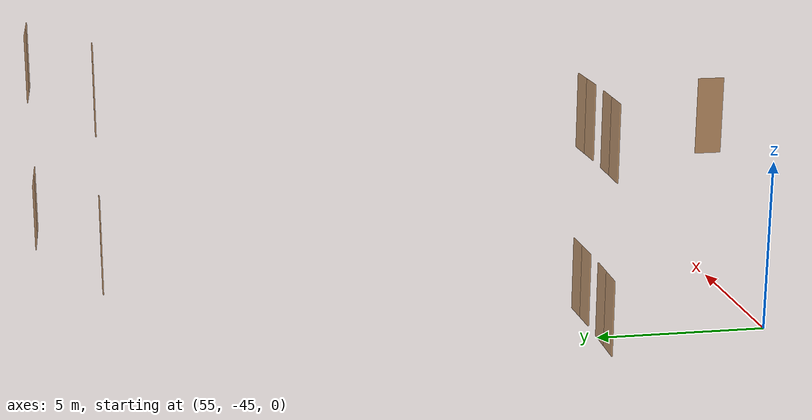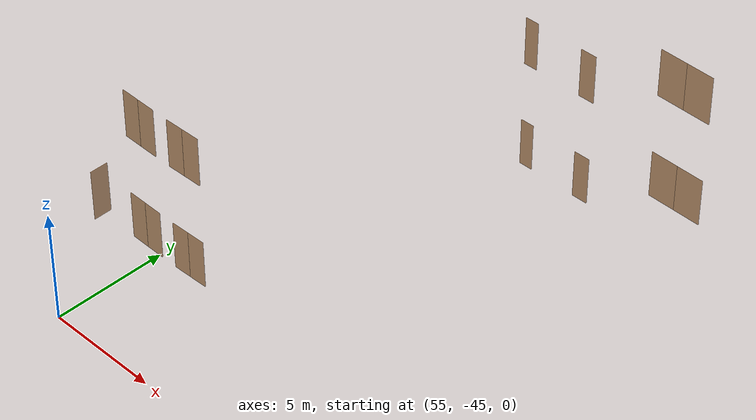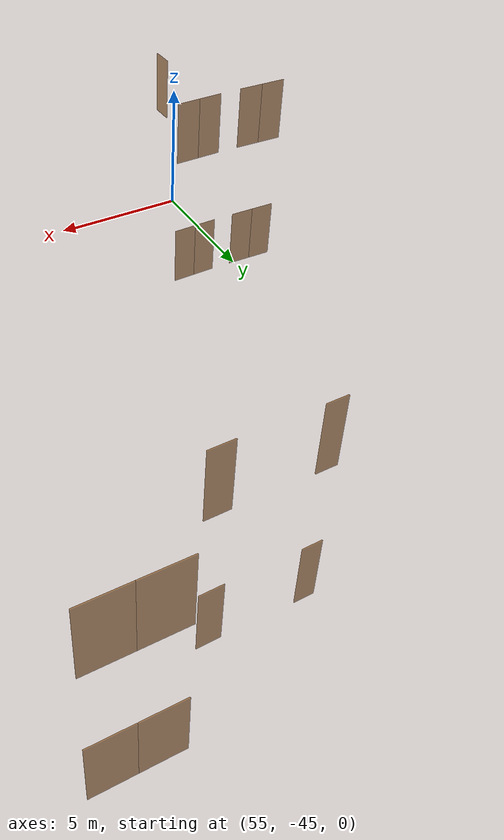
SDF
<sdf version="1.7">
 <world name="sim_world">
  <model name="null29">
   <pose>56.75721404955611 -39.98507373973776 0.0 0 0 0.03016034311520613</pose>
   <link name="right">
    <pose>0.41388301737579014 0 1.11 0 0 0</pose>
    <visual name="right_visual">
     <geometry><box><size>0.8177660347515803 0.03 2.2</size></box></geometry>
     <material>
      <ambient>0.5 0.25 0 0.6</ambient>
      <diffuse>0.5 0.25 0 0.6</diffuse>
      <pbr><metal><metalness>0.0</metalness></metal></pbr>
     </material>
    </visual>
    <collision name="right_collision">
     <geometry><box><size>0.8177660347515803 0.03 2.2</size></box></geometry>
     <surface><contact><collide_bitmask>0x02</collide_bitmask></contact></surface>
    </collision>
    <inertial>
     <mass>50.0</mass>
     <inertia><ixx>20.17041666666667</ixx><iyy>22.953088698305518</iyy><izz>2.790172031638845</izz></inertia>
    </inertial>
   </link>
   <joint name="right_joint" type="revolute">
    <parent>world</parent>
    <child>right</child>
    <axis><xyz>0 0 -1</xyz><limit><lower>0</lower><upper>1.57</upper></limit></axis>
    <pose>0.41388301737579014 0 0 0 0 0</pose>
   </joint>
   <link name="left">
    <pose>-0.41388301737579014 0 1.11 0 0 0</pose>
    <visual name="left_visual">
     <geometry><box><size>0.8177660347515803 0.03 2.2</size></box></geometry>
     <material>
      <ambient>0.5 0.25 0 0.6</ambient>
      <diffuse>0.5 0.25 0 0.6</diffuse>
      <pbr><metal><metalness>0.0</metalness></metal></pbr>
     </material>
    </visual>
    <collision name="left_collision">
     <geometry><box><size>0.8177660347515803 0.03 2.2</size></box></geometry>
     <surface><contact><collide_bitmask>0x02</collide_bitmask></contact></surface>
    </collision>
    <inertial>
     <mass>50.0</mass>
     <inertia><ixx>20.17041666666667</ixx><iyy>22.953088698305518</iyy><izz>2.790172031638845</izz></inertia>
    </inertial>
   </link>
   <joint name="left_joint" type="revolute">
    <parent>world</parent>
    <child>left</child>
    <axis><xyz>0 0 -1</xyz><limit><lower>-1.57</lower><upper>0</upper></limit></axis>
    <pose>-0.41388301737579014 0 0 0 0 0</pose>
   </joint>
   <plugin name="register_component" filename="libregister_component.so">
    <component name="Door">
     <v_max_door>0.5</v_max_door>
     <a_max_door>0.3</a_max_door>
     <a_nom_door>0.15</a_nom_door>
     <dx_min_door>0.01</dx_min_door>
     <f_max_door>500.0</f_max_door>
     <ros_interface>true</ros_interface>
     <door name="null29" type="DoubleSwingDoor" left_joint_name="left_joint" right_joint_name="right_joint"/>
    </component>
   </plugin>
  </model>
  <model name="null30">
   <pose>54.3112120621123 -40.000373435120196 0.0 0 0 -0.011263767413465844</pose>
   <link name="right">
    <pose>0.42891651536758324 0 1.11 0 0 0</pose>
    <visual name="right_visual">
     <geometry><box><size>0.8478330307351665 0.03 2.2</size></box></geometry>
     <material>
      <ambient>0.5 0.25 0 0.6</ambient>
      <diffuse>0.5 0.25 0 0.6</diffuse>
      <pbr><metal><metalness>0.0</metalness></metal></pbr>
     </material>
    </visual>
    <collision name="right_collision">
     <geometry><box><size>0.8478330307351665 0.03 2.2</size></box></geometry>
     <surface><contact><collide_bitmask>0x02</collide_bitmask></contact></surface>
    </collision>
    <inertial>
     <mass>50.0</mass>
     <inertia><ixx>20.17041666666667</ixx><iyy>23.161753533356578</iyy><izz>2.9988368666899077</izz></inertia>
    </inertial>
   </link>
   <joint name="right_joint" type="revolute">
    <parent>world</parent>
    <child>right</child>
    <axis><xyz>0 0 -1</xyz><limit><lower>0</lower><upper>1.57</upper></limit></axis>
    <pose>0.42891651536758324 0 0 0 0 0</pose>
   </joint>
   <link name="left">
    <pose>-0.42891651536758324 0 1.11 0 0 0</pose>
    <visual name="left_visual">
     <geometry><box><size>0.8478330307351665 0.03 2.2</size></box></geometry>
     <material>
      <ambient>0.5 0.25 0 0.6</ambient>
      <diffuse>0.5 0.25 0 0.6</diffuse>
      <pbr><metal><metalness>0.0</metalness></metal></pbr>
     </material>
    </visual>
    <collision name="left_collision">
     <geometry><box><size>0.8478330307351665 0.03 2.2</size></box></geometry>
     <surface><contact><collide_bitmask>0x02</collide_bitmask></contact></surface>
    </collision>
    <inertial>
     <mass>50.0</mass>
     <inertia><ixx>20.17041666666667</ixx><iyy>23.161753533356578</iyy><izz>2.9988368666899077</izz></inertia>
    </inertial>
   </link>
   <joint name="left_joint" type="revolute">
    <parent>world</parent>
    <child>left</child>
    <axis><xyz>0 0 -1</xyz><limit><lower>-1.57</lower><upper>0</upper></limit></axis>
    <pose>-0.42891651536758324 0 0 0 0 0</pose>
   </joint>
   <plugin name="register_component" filename="libregister_component.so">
    <component name="Door">
     <v_max_door>0.5</v_max_door>
     <a_max_door>0.3</a_max_door>
     <a_nom_door>0.15</a_nom_door>
     <dx_min_door>0.01</dx_min_door>
     <f_max_door>500.0</f_max_door>
     <ros_interface>true</ros_interface>
     <door name="null30" type="DoubleSwingDoor" left_joint_name="left_joint" right_joint_name="right_joint"/>
    </component>
   </plugin>
  </model>
  <model name="null43">
   <pose>61.205681117426394 -26.04441481852968 0.0 0 0 0.024390884898283224</pose>
   <link name="right">
    <pose>0 0 1.11 0 0 0</pose>
    <visual name="right_visual">
     <geometry><box><size>0.6144581876163675 0.03 2.2</size></box></geometry>
     <material>
      <ambient>0.5 0.25 0 0.6</ambient>
      <diffuse>0.5 0.25 0 0.6</diffuse>
      <pbr><metal><metalness>0.0</metalness></metal></pbr>
     </material>
    </visual>
    <collision name="right_collision">
     <geometry><box><size>0.6144581876163675 0.03 2.2</size></box></geometry>
     <surface><contact><collide_bitmask>0x02</collide_bitmask></contact></surface>
    </collision>
    <inertial>
     <mass>50.0</mass>
     <inertia><ixx>20.17041666666667</ixx><iyy>21.739828601369968</iyy><izz>1.5769119347032965</izz></inertia>
    </inertial>
   </link>
   <joint name="right_joint" type="revolute">
    <parent>world</parent>
    <child>right</child>
    <axis><xyz>0 0 -1</xyz><limit><lower>0</lower><upper>1.57</upper></limit></axis>
    <pose>0.31222909380818376 0 0 0 0 0</pose>
   </joint>
   <plugin name="register_component" filename="libregister_component.so">
    <component name="Door">
     <v_max_door>0.5</v_max_door>
     <a_max_door>0.3</a_max_door>
     <a_nom_door>0.15</a_nom_door>
     <dx_min_door>0.01</dx_min_door>
     <f_max_door>500.0</f_max_door>
     <ros_interface>true</ros_interface>
     <door name="null43" type="SwingDoor" left_joint_name="empty_joint" right_joint_name="right_joint"/>
    </component>
   </plugin>
  </model>
  <model name="null44">
   <pose>64.09385972733018 -26.027376202682134 0.0 0 0 0.025588563531781544</pose>
   <link name="right">
    <pose>0 0 1.11 0 0 0</pose>
    <visual name="right_visual">
     <geometry><box><size>0.7266459252206702 0.03 2.2</size></box></geometry>
     <material>
      <ambient>0.5 0.25 0 0.6</ambient>
      <diffuse>0.5 0.25 0 0.6</diffuse>
      <pbr><metal><metalness>0.0</metalness></metal></pbr>
     </material>
    </visual>
    <collision name="right_collision">
     <geometry><box><size>0.7266459252206702 0.03 2.2</size></box></geometry>
     <surface><contact><collide_bitmask>0x02</collide_bitmask></contact></surface>
    </collision>
    <inertial>
     <mass>50.0</mass>
     <inertia><ixx>20.17041666666667</ixx><iyy>22.366726252665853</iyy><izz>2.2038095859991826</izz></inertia>
    </inertial>
   </link>
   <joint name="right_joint" type="revolute">
    <parent>world</parent>
    <child>right</child>
    <axis><xyz>0 0 -1</xyz><limit><lower>0</lower><upper>1.57</upper></limit></axis>
    <pose>0.3683229626103351 0 0 0 0 0</pose>
   </joint>
   <plugin name="register_component" filename="libregister_component.so">
    <component name="Door">
     <v_max_door>0.5</v_max_door>
     <a_max_door>0.3</a_max_door>
     <a_nom_door>0.15</a_nom_door>
     <dx_min_door>0.01</dx_min_door>
     <f_max_door>500.0</f_max_door>
     <ros_interface>true</ros_interface>
     <door name="null44" type="SwingDoor" left_joint_name="empty_joint" right_joint_name="right_joint"/>
    </component>
   </plugin>
  </model>
  <model name="null50x">
   <pose>67.12617240610726 -23.871381273449995 0.0 0 0 0.004604160688547583</pose>
   <link name="right">
    <pose>0.6381064327509649 0 1.11 0 0 0</pose>
    <visual name="right_visual">
     <geometry><box><size>1.2662128655019298 0.03 2.2</size></box></geometry>
     <material>
      <ambient>0.5 0.25 0 0.6</ambient>
      <diffuse>0.5 0.25 0 0.6</diffuse>
      <pbr><metal><metalness>0.0</metalness></metal></pbr>
     </material>
    </visual>
    <collision name="right_collision">
     <geometry><box><size>1.2662128655019298 0.03 2.2</size></box></geometry>
     <surface><contact><collide_bitmask>0x02</collide_bitmask></contact></surface>
    </collision>
    <inertial>
     <mass>50.0</mass>
     <inertia><ixx>20.17041666666667</ixx><iyy>26.84706258651087</iyy><izz>6.684145919844201</izz></inertia>
    </inertial>
   </link>
   <joint name="right_joint" type="revolute">
    <parent>world</parent>
    <child>right</child>
    <axis><xyz>0 0 -1</xyz><limit><lower>0</lower><upper>1.57</upper></limit></axis>
    <pose>0.6381064327509649 0 0 0 0 0</pose>
   </joint>
   <link name="left">
    <pose>-0.6381064327509649 0 1.11 0 0 0</pose>
    <visual name="left_visual">
     <geometry><box><size>1.2662128655019298 0.03 2.2</size></box></geometry>
     <material>
      <ambient>0.5 0.25 0 0.6</ambient>
      <diffuse>0.5 0.25 0 0.6</diffuse>
      <pbr><metal><metalness>0.0</metalness></metal></pbr>
     </material>
    </visual>
    <collision name="left_collision">
     <geometry><box><size>1.2662128655019298 0.03 2.2</size></box></geometry>
     <surface><contact><collide_bitmask>0x02</collide_bitmask></contact></surface>
    </collision>
    <inertial>
     <mass>50.0</mass>
     <inertia><ixx>20.17041666666667</ixx><iyy>26.84706258651087</iyy><izz>6.684145919844201</izz></inertia>
    </inertial>
   </link>
   <joint name="left_joint" type="revolute">
    <parent>world</parent>
    <child>left</child>
    <axis><xyz>0 0 -1</xyz><limit><lower>-1.57</lower><upper>0</upper></limit></axis>
    <pose>-0.6381064327509649 0 0 0 0 0</pose>
   </joint>
   <plugin name="register_component" filename="libregister_component.so">
    <component name="Door">
     <v_max_door>0.5</v_max_door>
     <a_max_door>0.3</a_max_door>
     <a_nom_door>0.15</a_nom_door>
     <dx_min_door>0.01</dx_min_door>
     <f_max_door>500.0</f_max_door>
     <ros_interface>true</ros_interface>
     <door name="null50x" type="DoubleSwingDoor" left_joint_name="left_joint" right_joint_name="right_joint"/>
    </component>
   </plugin>
  </model>
  <model name="anull26">
   <pose>56.315199490227094 -43.499235937511315 5.0 0 0 -1.566101005484563</pose>
   <link name="right">
    <pose>0 0 1.11 0 0 0</pose>
    <visual name="right_visual">
     <geometry><box><size>0.7607181919543684 0.03 2.2</size></box></geometry>
     <material>
      <ambient>0.5 0.25 0 0.6</ambient>
      <diffuse>0.5 0.25 0 0.6</diffuse>
      <pbr><metal><metalness>0.0</metalness></metal></pbr>
     </material>
    </visual>
    <collision name="right_collision">
     <geometry><box><size>0.7607181919543684 0.03 2.2</size></box></geometry>
     <surface><contact><collide_bitmask>0x02</collide_bitmask></contact></surface>
    </collision>
    <inertial>
     <mass>50.0</mass>
     <inertia><ixx>20.17041666666667</ixx><iyy>22.577884031543018</iyy><izz>2.4149673648763472</izz></inertia>
    </inertial>
   </link>
   <joint name="right_joint" type="revolute">
    <parent>world</parent>
    <child>right</child>
    <axis><xyz>0 0 -1</xyz><limit><lower>0</lower><upper>1.57</upper></limit></axis>
    <pose>0.3853590959771842 0 0 0 0 0</pose>
   </joint>
   <plugin name="register_component" filename="libregister_component.so">
    <component name="Door">
     <v_max_door>0.5</v_max_door>
     <a_max_door>0.3</a_max_door>
     <a_nom_door>0.15</a_nom_door>
     <dx_min_door>0.01</dx_min_door>
     <f_max_door>500.0</f_max_door>
     <ros_interface>true</ros_interface>
     <door name="anull26" type="SwingDoor" left_joint_name="empty_joint" right_joint_name="right_joint"/>
    </component>
   </plugin>
  </model>
  <model name="anull29">
   <pose>56.759366319157245 -39.958006932966065 5.0 0 0 0.03016120493404881</pose>
   <link name="right">
    <pose>0.4138848008392078 0 1.11 0 0 0</pose>
    <visual name="right_visual">
     <geometry><box><size>0.8177696016784156 0.03 2.2</size></box></geometry>
     <material>
      <ambient>0.5 0.25 0 0.6</ambient>
      <diffuse>0.5 0.25 0 0.6</diffuse>
      <pbr><metal><metalness>0.0</metalness></metal></pbr>
     </material>
    </visual>
    <collision name="right_collision">
     <geometry><box><size>0.8177696016784156 0.03 2.2</size></box></geometry>
     <surface><contact><collide_bitmask>0x02</collide_bitmask></contact></surface>
    </collision>
    <inertial>
     <mass>50.0</mass>
     <inertia><ixx>20.17041666666667</ixx><iyy>22.953113005955316</iyy><izz>2.790196339288644</izz></inertia>
    </inertial>
   </link>
   <joint name="right_joint" type="revolute">
    <parent>world</parent>
    <child>right</child>
    <axis><xyz>0 0 -1</xyz><limit><lower>0</lower><upper>1.57</upper></limit></axis>
    <pose>0.4138848008392078 0 0 0 0 0</pose>
   </joint>
   <link name="left">
    <pose>-0.4138848008392078 0 1.11 0 0 0</pose>
    <visual name="left_visual">
     <geometry><box><size>0.8177696016784156 0.03 2.2</size></box></geometry>
     <material>
      <ambient>0.5 0.25 0 0.6</ambient>
      <diffuse>0.5 0.25 0 0.6</diffuse>
      <pbr><metal><metalness>0.0</metalness></metal></pbr>
     </material>
    </visual>
    <collision name="left_collision">
     <geometry><box><size>0.8177696016784156 0.03 2.2</size></box></geometry>
     <surface><contact><collide_bitmask>0x02</collide_bitmask></contact></surface>
    </collision>
    <inertial>
     <mass>50.0</mass>
     <inertia><ixx>20.17041666666667</ixx><iyy>22.953113005955316</iyy><izz>2.790196339288644</izz></inertia>
    </inertial>
   </link>
   <joint name="left_joint" type="revolute">
    <parent>world</parent>
    <child>left</child>
    <axis><xyz>0 0 -1</xyz><limit><lower>-1.57</lower><upper>0</upper></limit></axis>
    <pose>-0.4138848008392078 0 0 0 0 0</pose>
   </joint>
   <plugin name="register_component" filename="libregister_component.so">
    <component name="Door">
     <v_max_door>0.5</v_max_door>
     <a_max_door>0.3</a_max_door>
     <a_nom_door>0.15</a_nom_door>
     <dx_min_door>0.01</dx_min_door>
     <f_max_door>500.0</f_max_door>
     <ros_interface>true</ros_interface>
     <door name="anull29" type="DoubleSwingDoor" left_joint_name="left_joint" right_joint_name="right_joint"/>
    </component>
   </plugin>
  </model>
  <model name="anull30">
   <pose>54.313353804832154 -39.9733088022961 5.0 0 0 -0.01126290559462209</pose>
   <link name="right">
    <pose>0.4289183636118518 0 1.11 0 0 0</pose>
    <visual name="right_visual">
     <geometry><box><size>0.8478367272237036 0.03 2.2</size></box></geometry>
     <material>
      <ambient>0.5 0.25 0 0.6</ambient>
      <diffuse>0.5 0.25 0 0.6</diffuse>
      <pbr><metal><metalness>0.0</metalness></metal></pbr>
     </material>
    </visual>
    <collision name="right_collision">
     <geometry><box><size>0.8478367272237036 0.03 2.2</size></box></geometry>
     <surface><contact><collide_bitmask>0x02</collide_bitmask></contact></surface>
    </collision>
    <inertial>
     <mass>50.0</mass>
     <inertia><ixx>20.17041666666667</ixx><iyy>23.16177965012251</iyy><izz>2.998862983455837</izz></inertia>
    </inertial>
   </link>
   <joint name="right_joint" type="revolute">
    <parent>world</parent>
    <child>right</child>
    <axis><xyz>0 0 -1</xyz><limit><lower>0</lower><upper>1.57</upper></limit></axis>
    <pose>0.4289183636118518 0 0 0 0 0</pose>
   </joint>
   <link name="left">
    <pose>-0.4289183636118518 0 1.11 0 0 0</pose>
    <visual name="left_visual">
     <geometry><box><size>0.8478367272237036 0.03 2.2</size></box></geometry>
     <material>
      <ambient>0.5 0.25 0 0.6</ambient>
      <diffuse>0.5 0.25 0 0.6</diffuse>
      <pbr><metal><metalness>0.0</metalness></metal></pbr>
     </material>
    </visual>
    <collision name="left_collision">
     <geometry><box><size>0.8478367272237036 0.03 2.2</size></box></geometry>
     <surface><contact><collide_bitmask>0x02</collide_bitmask></contact></surface>
    </collision>
    <inertial>
     <mass>50.0</mass>
     <inertia><ixx>20.17041666666667</ixx><iyy>23.16177965012251</iyy><izz>2.998862983455837</izz></inertia>
    </inertial>
   </link>
   <joint name="left_joint" type="revolute">
    <parent>world</parent>
    <child>left</child>
    <axis><xyz>0 0 -1</xyz><limit><lower>-1.57</lower><upper>0</upper></limit></axis>
    <pose>-0.4289183636118518 0 0 0 0 0</pose>
   </joint>
   <plugin name="register_component" filename="libregister_component.so">
    <component name="Door">
     <v_max_door>0.5</v_max_door>
     <a_max_door>0.3</a_max_door>
     <a_nom_door>0.15</a_nom_door>
     <dx_min_door>0.01</dx_min_door>
     <f_max_door>500.0</f_max_door>
     <ros_interface>true</ros_interface>
     <door name="anull30" type="DoubleSwingDoor" left_joint_name="left_joint" right_joint_name="right_joint"/>
    </component>
   </plugin>
  </model>
  <model name="anull43">
   <pose>61.207840541542225 -26.017284106276854 5.0 0 0 0.02439174671712008</pose>
   <link name="right">
    <pose>0 0 1.11 0 0 0</pose>
    <visual name="right_visual">
     <geometry><box><size>0.6144608784693064 0.03 2.2</size></box></geometry>
     <material>
      <ambient>0.5 0.25 0 0.6</ambient>
      <diffuse>0.5 0.25 0 0.6</diffuse>
      <pbr><metal><metalness>0.0</metalness></metal></pbr>
     </material>
    </visual>
    <collision name="right_collision">
     <geometry><box><size>0.6144608784693064 0.03 2.2</size></box></geometry>
     <surface><contact><collide_bitmask>0x02</collide_bitmask></contact></surface>
    </collision>
    <inertial>
     <mass>50.0</mass>
     <inertia><ixx>20.17041666666667</ixx><iyy>21.73984237987197</iyy><izz>1.5769257132052992</izz></inertia>
    </inertial>
   </link>
   <joint name="right_joint" type="revolute">
    <parent>world</parent>
    <child>right</child>
    <axis><xyz>0 0 -1</xyz><limit><lower>0</lower><upper>1.57</upper></limit></axis>
    <pose>0.3122304392346532 0 0 0 0 0</pose>
   </joint>
   <plugin name="register_component" filename="libregister_component.so">
    <component name="Door">
     <v_max_door>0.5</v_max_door>
     <a_max_door>0.3</a_max_door>
     <a_nom_door>0.15</a_nom_door>
     <dx_min_door>0.01</dx_min_door>
     <f_max_door>500.0</f_max_door>
     <ros_interface>true</ros_interface>
     <door name="anull43" type="SwingDoor" left_joint_name="empty_joint" right_joint_name="right_joint"/>
    </component>
   </plugin>
  </model>
  <model name="anull44">
   <pose>64.0960315822119 -26.000242927910747 5.0 0 0 0.025589425350629146</pose>
   <link name="right">
    <pose>0 0 1.11 0 0 0</pose>
    <visual name="right_visual">
     <geometry><box><size>0.7266490995018217 0.03 2.2</size></box></geometry>
     <material>
      <ambient>0.5 0.25 0 0.6</ambient>
      <diffuse>0.5 0.25 0 0.6</diffuse>
      <pbr><metal><metalness>0.0</metalness></metal></pbr>
     </material>
    </visual>
    <collision name="right_collision">
     <geometry><box><size>0.7266490995018217 0.03 2.2</size></box></geometry>
     <surface><contact><collide_bitmask>0x02</collide_bitmask></contact></surface>
    </collision>
    <inertial>
     <mass>50.0</mass>
     <inertia><ixx>20.17041666666667</ixx><iyy>22.36674547419504</iyy><izz>2.2038288075283683</izz></inertia>
    </inertial>
   </link>
   <joint name="right_joint" type="revolute">
    <parent>world</parent>
    <child>right</child>
    <axis><xyz>0 0 -1</xyz><limit><lower>0</lower><upper>1.57</upper></limit></axis>
    <pose>0.36832454975091083 0 0 0 0 0</pose>
   </joint>
   <plugin name="register_component" filename="libregister_component.so">
    <component name="Door">
     <v_max_door>0.5</v_max_door>
     <a_max_door>0.3</a_max_door>
     <a_nom_door>0.15</a_nom_door>
     <dx_min_door>0.01</dx_min_door>
     <f_max_door>500.0</f_max_door>
     <ros_interface>true</ros_interface>
     <door name="anull44" type="SwingDoor" left_joint_name="empty_joint" right_joint_name="right_joint"/>
    </component>
   </plugin>
  </model>
  <model name="anull50">
   <pose>67.12835546944217 -23.84423609496563 5.0 0 0 0.004605022507386228</pose>
   <link name="right">
    <pose>0.6381091824155656 0 1.11 0 0 0</pose>
    <visual name="right_visual">
     <geometry><box><size>1.2662183648311311 0.03 2.2</size></box></geometry>
     <material>
      <ambient>0.5 0.25 0 0.6</ambient>
      <diffuse>0.5 0.25 0 0.6</diffuse>
      <pbr><metal><metalness>0.0</metalness></metal></pbr>
     </material>
    </visual>
    <collision name="right_collision">
     <geometry><box><size>1.2662183648311311 0.03 2.2</size></box></geometry>
     <surface><contact><collide_bitmask>0x02</collide_bitmask></contact></surface>
    </collision>
    <inertial>
     <mass>50.0</mass>
     <inertia><ixx>20.17041666666667</ixx><iyy>26.847120614315102</iyy><izz>6.684203947648431</izz></inertia>
    </inertial>
   </link>
   <joint name="right_joint" type="revolute">
    <parent>world</parent>
    <child>right</child>
    <axis><xyz>0 0 -1</xyz><limit><lower>0</lower><upper>1.57</upper></limit></axis>
    <pose>0.6381091824155656 0 0 0 0 0</pose>
   </joint>
   <link name="left">
    <pose>-0.6381091824155656 0 1.11 0 0 0</pose>
    <visual name="left_visual">
     <geometry><box><size>1.2662183648311311 0.03 2.2</size></box></geometry>
     <material>
      <ambient>0.5 0.25 0 0.6</ambient>
      <diffuse>0.5 0.25 0 0.6</diffuse>
      <pbr><metal><metalness>0.0</metalness></metal></pbr>
     </material>
    </visual>
    <collision name="left_collision">
     <geometry><box><size>1.2662183648311311 0.03 2.2</size></box></geometry>
     <surface><contact><collide_bitmask>0x02</collide_bitmask></contact></surface>
    </collision>
    <inertial>
     <mass>50.0</mass>
     <inertia><ixx>20.17041666666667</ixx><iyy>26.847120614315102</iyy><izz>6.684203947648431</izz></inertia>
    </inertial>
   </link>
   <joint name="left_joint" type="revolute">
    <parent>world</parent>
    <child>left</child>
    <axis><xyz>0 0 -1</xyz><limit><lower>-1.57</lower><upper>0</upper></limit></axis>
    <pose>-0.6381091824155656 0 0 0 0 0</pose>
   </joint>
   <plugin name="register_component" filename="libregister_component.so">
    <component name="Door">
     <v_max_door>0.5</v_max_door>
     <a_max_door>0.3</a_max_door>
     <a_nom_door>0.15</a_nom_door>
     <dx_min_door>0.01</dx_min_door>
     <f_max_door>500.0</f_max_door>
     <ros_interface>true</ros_interface>
     <door name="anull50" type="DoubleSwingDoor" left_joint_name="left_joint" right_joint_name="right_joint"/>
    </component>
   </plugin>
  </model>
 </world>
</sdf>
